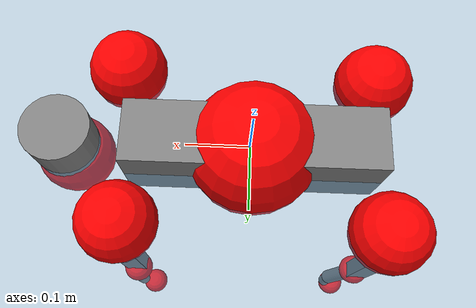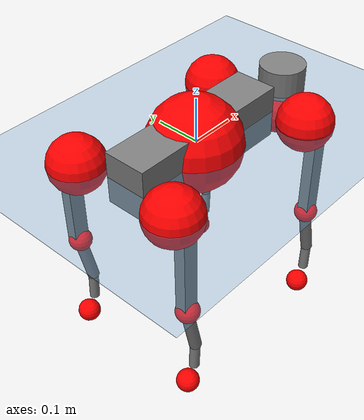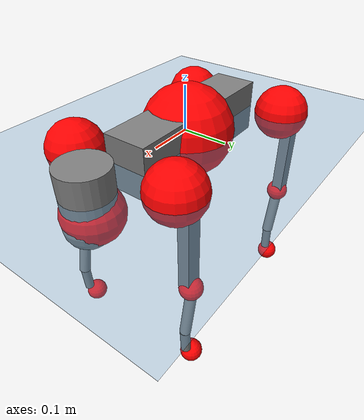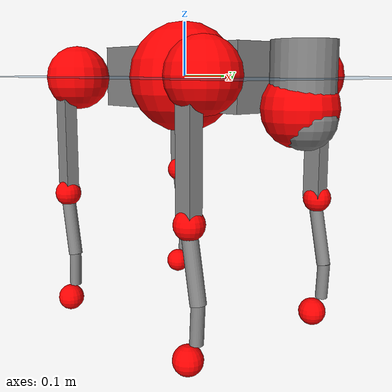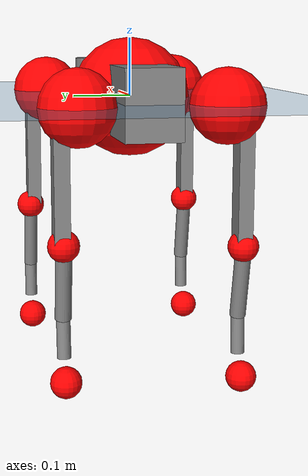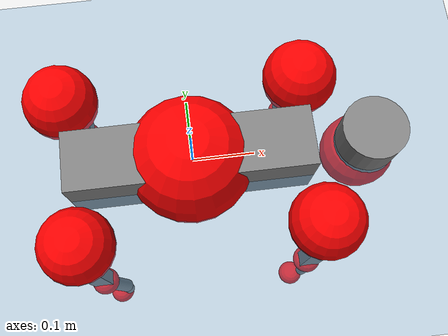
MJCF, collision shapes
<mujoco model="go2">
  <compiler angle="radian" assetdir="assets" balanceinertia="true" inertiafromgeom="false"/>

  <option timestep="0.005" density="1.2" viscosity="2e-05"/>

  <size nkey="1"/>

  <visual>
    <quality shadowsize="8192"/>
    <map shadowclip="0.5"/>
  </visual>

  <default>
    <default class="/">
      <geom contype="0" conaffinity="0" group="1" solref="-1000 -80"/>
      <site size="0.01 0.005 0.005" group="5"/>
      <general forcelimited="true" biastype="affine" gainprm="20" biasprm="0 -20 -0.5"/>
      <default class="go2">
        <joint armature="0.01" damping="0.01" frictionloss="0.2"/>
        <geom condim="1" margin="0.001"/>
        <default class="visual">
          <geom type="mesh" group="2"/>
        </default>
        <default class="collision">
          <geom group="3"/>
          <default class="foot">
            <geom size="0.022 0 0" condim="6" priority="1" friction="0.8 0.02 0.01" solimp="0.015 1 0.022"/>
          </default>
        </default>
        <default class="reward_collision_sphere">
          <geom group="5" rgba="1 0 0 1"/>
        </default>
      </default>
    </default>
  </default>

  <asset>
    <texture type="skybox" colorspace="auto" name="//unnamed_texture_0" builtin="gradient" rgb1="0.95 0.95 0.95" rgb2="0.95 0.95 0.95" width="100" height="600"/>
    <texture type="2d" colorspace="auto" name="texplane" builtin="checker" rgb1="0.345 0.575 0.748" rgb2="0.345 0.575 0.748" markrgb="1 1 1" width="512" height="512"/>
    <material name="MatPlane" class="/" texture="texplane" texuniform="true" texrepeat="2 2" specular="0.9"/>
    <material name="metal" class="/" rgba="0.9 0.95 0.95 1"/>
    <material name="black" class="/" rgba="0 0 0 1"/>
    <material name="white" class="/"/>
    <material name="gray" class="/" rgba="0.671705 0.692426 0.77427 1"/>
    <mesh name="base_0" class="/" file="base_0.obj"/>
    <mesh name="base_1" class="/" file="base_1.obj"/>
    <mesh name="base_2" class="/" file="base_2.obj"/>
    <mesh name="base_3" class="/" file="base_3.obj"/>
    <mesh name="base_4" class="/" file="base_4.obj"/>
    <mesh name="hip_0" class="/" file="hip_0.obj"/>
    <mesh name="hip_1" class="/" file="hip_1.obj"/>
    <mesh name="thigh_0" class="/" file="thigh_0.obj"/>
    <mesh name="thigh_1" class="/" file="thigh_1.obj"/>
    <mesh name="thigh_mirror_0" class="/" file="thigh_mirror_0.obj"/>
    <mesh name="thigh_mirror_1" class="/" file="thigh_mirror_1.obj"/>
    <mesh name="calf_0" class="/" file="calf_0.obj"/>
    <mesh name="calf_1" class="/" file="calf_1.obj"/>
    <mesh name="calf_mirror_0" class="/" file="calf_mirror_0.obj"/>
    <mesh name="calf_mirror_1" class="/" file="calf_mirror_1.obj"/>
    <mesh name="foot" class="/" file="foot.obj"/>
  </asset>

  <worldbody>
    <geom name="floor" class="/" size="100 100 0.125" type="plane" group="0" material="MatPlane"/>
    <light name="toplight_shadow" class="/" pos="0 0 5" dir="0.0990148 0.0990148 -0.990148" type="directional" ambient="0.04 0.04 0.04" diffuse="0.55 0.55 0.55" specular="0.12 0.12 0.12"/>
    <light name="toplight_fill" class="/" pos="0 0 5" dir="0.0990148 0.0990148 -0.990148" type="directional" castshadow="false" ambient="0.04 0.04 0.04" diffuse="0.3 0.3 0.3" specular="0.08 0.08 0.08"/>
    <body name="trunk" childclass="go2" pos="-0.00430888 0.00127749 -0.00161518" quat="0.999999 -0.000471859 -0.000848209 0.000561932">
      <inertial pos="0.0216387 -0.00204112 -0.00570244" quat="-0.000581746 0.713517 -0.00180279 0.700636" mass="7.94028" diaginertia="0.106937 0.113935 0.0314049"/>
      <joint name="//unnamed_joint_0" type="free" armature="0" damping="0" frictionloss="0"/>
      <geom name="//unnamed_geom_1" class="visual" material="black" mesh="base_0"/>
      <geom name="//unnamed_geom_2" class="visual" material="black" mesh="base_1"/>
      <geom name="//unnamed_geom_3" class="visual" material="black" mesh="base_2"/>
      <geom name="//unnamed_geom_4" class="visual" material="white" mesh="base_3"/>
      <geom name="//unnamed_geom_5" class="visual" material="gray" mesh="base_4"/>
      <geom name="trunk_1" class="collision" size="0.195349 0.0485516 0.0591967" type="box"/>
      <geom name="trunk_2" class="collision" size="0.0519269 0.0467342" pos="0.290629 0 0.0105396" type="cylinder"/>
      <geom name="trunk_3" class="collision" size="0.0488113" pos="0.298787 0 -0.0632378"/>
      <geom name="//unnamed_geom_9" class="reward_collision_sphere" size="0.103854"/>
      <geom name="//unnamed_geom_10" class="reward_collision_sphere" size="0.0623123" pos="0.28553 0 -0.0474283"/>
      <site name="imu" pos="-0.0155881 -0.0112542 0.0732233" size="0.0103854"/>
      <camera name="track" pos="0 -2.0838 0" quat="0.707107 0.707107 0 0" mode="trackcom"/>
      <camera name="ego_camera" pos="0.318162 0 0.0474283" quat="-0.5 -0.5 0.5 0.5"/>
      <body name="FL_hip" pos="0.198363 0.0503436 0.00112757" quat="0.999998 0.00175254 0.000476816 -0.000152283">
        <inertial pos="-0.00038975 0.00105224 -0.000759084" quat="0.498346 0.500807 0.505165 0.495633" mass="0.729541" diaginertia="0.000936253 0.000741811 0.000600872"/>
        <joint name="FL_hip_joint" pos="0 0 0" axis="0.999366 -0.0348495 -0.00725779" stiffness="0.0268147" range="-1.08168 1.04715" armature="0.0132703" damping="0.0162435" frictionloss="0.211947"/>
        <geom name="//unnamed_geom_11" class="visual" material="metal" mesh="hip_0"/>
        <geom name="//unnamed_geom_12" class="visual" material="gray" mesh="hip_1"/>
        <geom name="//unnamed_geom_13" class="collision" size="0.0477727 0.0207708" pos="0 0.0833521 0" quat="0.707107 0.707107 0 0" type="cylinder"/>
        <geom name="//unnamed_geom_14" class="reward_collision_sphere" size="0.0623123" pos="0 0.072933 0"/>
        <body name="FL_thigh" pos="0.00104408 0.100569 0.000870186" quat="1 0.000162672 -7.99087e-06 0.0003441">
          <inertial pos="-0.00584802 -0.0231377 -0.0282492" quat="0.830224 0.084038 -0.0226088 0.550594" mass="1.28221" diaginertia="0.00647003 0.00702061 0.0011113"/>
          <joint name="FL_thigh_joint" pos="0 0 0" axis="-0.00142129 0.999999 0.000715921" stiffness="0.0081736" range="-1.55009 3.49339" armature="0.00851088" damping="0.00859171" frictionloss="0.212054"/>
          <geom name="//unnamed_geom_15" class="visual" material="metal" mesh="thigh_0"/>
          <geom name="//unnamed_geom_16" class="visual" material="gray" mesh="thigh_1"/>
          <geom name="//unnamed_geom_17" class="collision" size="0.110604 0.0127221 0.0176551" pos="0 0 -0.112247" quat="0.707107 0 0.707107 0" type="box"/>
          <body name="FL_calf" pos="0.000428688 0.00641997 -0.226018" quat="1 -0.000568237 0.000516922 -0.000475024">
            <inertial pos="0.00679632 -0.00281223 -0.149974" quat="0.728461 0.000556559 -0.00332623 0.685079" mass="0.265526" diaginertia="0.00167807 0.00176571 7.15089e-05"/>
            <joint name="FL_calf_joint" pos="0 0 0" axis="0.00147932 0.999994 -0.00318533" stiffness="0.012017" range="-2.73427 -0.881778" armature="0.009998" damping="0.0171923" frictionloss="0.22794"/>
            <geom name="//unnamed_geom_18" class="visual" material="gray" mesh="calf_0"/>
            <geom name="//unnamed_geom_19" class="visual" material="black" mesh="calf_1"/>
            <geom name="FL_calf0" class="collision" size="0.0124625 0.0623123" pos="0.008158 0 -0.0632378" quat="0.994493 0 -0.104807 0" type="cylinder"/>
            <geom name="//unnamed_geom_21" class="collision" size="0.0114239 0.0337525" pos="0.020395 0 -0.155987" quat="0.999688 0 0.0249974 0" type="cylinder"/>
            <geom name="//unnamed_geom_22" class="visual" pos="0 0 -0.224494" quat="1 0 0 0" material="black" mesh="foot"/>
            <geom name="FL_foot" class="foot" size="0.0209328" pos="-0.0020395 0 -0.224494"/>
            <geom name="//unnamed_geom_24" class="reward_collision_sphere" size="0.0259634"/>
            <geom name="//unnamed_geom_25" class="reward_collision_sphere" size="0.0259634" pos="-0.0020395 0 -0.224494"/>
            <site name="FL_foot" class="foot" pos="-0.0020395 0 -0.224494" size="0.0103854"/>
          </body>
        </body>
      </body>
      <body name="FR_hip" pos="0.203489 -0.0545913 0.00381708" quat="1 -0.000410335 0.0007371 -6.0351e-05">
        <inertial pos="-0.0115127 3.65886e-05 0.00527624" quat="0.50161 0.504485 0.498791 0.495066" mass="0.72775" diaginertia="0.000892548 0.000692731 0.000580116"/>
        <joint name="FR_hip_joint" pos="0 0 0" axis="0.999784 -0.00430586 -0.0203557" stiffness="0.0148844" range="-0.947281 1.09032" armature="0.0100294" damping="0.00289712" frictionloss="0.243347"/>
        <geom name="//unnamed_geom_26" class="visual" pos="0 -1.05082e-10 -4.50716e-09" quat="4.63268e-05 1 0 0" material="metal" mesh="hip_0"/>
        <geom name="//unnamed_geom_27" class="visual" pos="0 -1.7035e-10 1.11479e-08" quat="4.63268e-05 1 0 0" material="gray" mesh="hip_1"/>
        <geom name="//unnamed_geom_28" class="collision" size="0.0477727 0.0207708" pos="0 -0.0833521 0" quat="0.707107 0.707107 0 0" type="cylinder"/>
        <geom name="//unnamed_geom_29" class="reward_collision_sphere" size="0.0623123" pos="0 -0.072933 0"/>
        <body name="FR_thigh" pos="0.000872366 -0.101812 -0.000482418" quat="1 -5.56093e-06 -1.39648e-05 -3.48713e-05">
          <inertial pos="-0.00400892 0.0161876 -0.0323968" quat="0.551589 -0.0195201 0.0821734 0.829829" mass="1.32233" diaginertia="0.00651518 0.00754162 0.00116229"/>
          <joint name="FR_thigh_joint" pos="0 0 0" axis="-0.00887963 -0.999933 -0.0074241" stiffness="0.00479346" range="-3.5353 1.57701" armature="0.00922236" damping="0.0234318" frictionloss="0.232421"/>
          <geom name="//unnamed_geom_30" class="visual" material="metal" mesh="thigh_mirror_0"/>
          <geom name="//unnamed_geom_31" class="visual" material="gray" mesh="thigh_mirror_1"/>
          <geom name="//unnamed_geom_32" class="collision" size="0.110604 0.0127221 0.0176551" pos="0 0 -0.112247" quat="0.707107 0 0.707107 0" type="box"/>
          <body name="FR_calf" pos="-0.000156875 0.00146833 -0.22788" quat="0.999995 -0.00220581 -0.00183284 0.00101351">
            <inertial pos="-0.000797359 0.00182147 -0.152426" quat="0.710866 -0.0055187 0.00692635 0.703271" mass="0.273943" diaginertia="0.0015996 0.00166282 6.2006e-05"/>
            <joint name="FR_calf_joint" pos="0 0 0" axis="-7.89989e-05 -0.999988 0.00486244" range="0.944779 2.69263" armature="0.0116514" damping="0" frictionloss="0.1653"/>
            <geom name="//unnamed_geom_33" class="visual" material="gray" mesh="calf_mirror_0"/>
            <geom name="//unnamed_geom_34" class="visual" material="black" mesh="calf_mirror_1"/>
            <geom name="FR_calf0" class="collision" size="0.013501 0.0623123" pos="0.0101975 0 -0.0632378" quat="0.995004 0 -0.0998334 0" type="cylinder"/>
            <geom name="//unnamed_geom_36" class="collision" size="0.0114239 0.0337525" pos="0.020395 0 -0.155987" quat="0.999688 0 0.0249974 0" type="cylinder"/>
            <geom name="//unnamed_geom_37" class="visual" pos="0 0 -0.224494" quat="1 0 0 0" material="black" mesh="foot"/>
            <geom name="FR_foot" class="foot" size="0.0213636" pos="-0.0020395 0 -0.224494"/>
            <geom name="//unnamed_geom_39" class="reward_collision_sphere" size="0.0259634"/>
            <geom name="//unnamed_geom_40" class="reward_collision_sphere" size="0.0259634" pos="-0.0020395 0 -0.224494"/>
            <site name="FR_foot" class="foot" pos="-0.0020395 0 -0.224494" size="0.0103854"/>
          </body>
        </body>
      </body>
      <body name="RL_hip" pos="-0.204749 0.0519828 -0.000283466" quat="1 0.000400175 -0.000327982 -0.000453226">
        <inertial pos="0.000154751 0.00883381 -0.000632676" quat="0.506999 0.481804 0.502429 0.508313" mass="0.761695" diaginertia="0.000956922 0.000732987 0.000658762"/>
        <joint name="RL_hip_joint" pos="0 0 0" axis="-0.999994 0.000911819 -0.00344205" stiffness="0.00295703" range="-1.0807 1.07519" armature="0.010297" damping="0" frictionloss="0.190678"/>
        <geom name="//unnamed_geom_41" class="visual" pos="2.98048e-10 0 5.84242e-08" quat="4.63268e-05 0 1 0" material="metal" mesh="hip_0"/>
        <geom name="//unnamed_geom_42" class="visual" pos="4.83171e-10 0 5.1814e-08" quat="4.63268e-05 0 1 0" material="gray" mesh="hip_1"/>
        <geom name="//unnamed_geom_43" class="collision" size="0.0477727 0.0207708" pos="0 0.0833521 0" quat="0.707107 0.707107 0 0" type="cylinder"/>
        <geom name="//unnamed_geom_44" class="reward_collision_sphere" size="0.0623123" pos="0 0.072933 0"/>
        <body name="RL_thigh" pos="-0.000297826 0.100284 0.00190436" quat="1 -0.000593159 0.000425223 -3.91017e-05">
          <inertial pos="-0.00156257 -0.0289608 -0.0332451" quat="0.835065 0.0819723 -0.0116621 0.543884" mass="1.29479" diaginertia="0.00651597 0.00711793 0.00120573"/>
          <joint name="RL_thigh_joint" pos="0 0 0" axis="0.0153615 0.999742 -0.0167356" stiffness="0.0155433" range="-0.556077 4.52172" armature="0.00776332" damping="0.0126187" frictionloss="0.171154"/>
          <geom name="//unnamed_geom_45" class="visual" material="metal" mesh="thigh_0"/>
          <geom name="//unnamed_geom_46" class="visual" material="gray" mesh="thigh_1"/>
          <geom name="//unnamed_geom_47" class="collision" size="0.110604 0.0127221 0.0176551" pos="0 0 -0.112247" quat="0.707107 0 0.707107 0" type="box"/>
          <body name="RL_calf" pos="0.00128038 -0.00343665 -0.218358" quat="0.999995 -0.00177179 0.00231741 -0.00150291">
            <inertial pos="0.00813696 -7.04923e-06 -0.156378" quat="0.710943 0.00114866 -0.004661 0.703233" mass="0.284245" diaginertia="0.0016217 0.00176858 6.90964e-05"/>
            <joint name="RL_calf_joint" pos="0 0 0" axis="-0.00203346 0.999965 -0.00812881" range="-2.68134 -0.813509" armature="0.0115183" damping="0" frictionloss="0.23594"/>
            <geom name="//unnamed_geom_48" class="visual" material="gray" mesh="calf_0"/>
            <geom name="//unnamed_geom_49" class="visual" material="black" mesh="calf_1"/>
            <geom name="RL_calf0" class="collision" size="0.013501 0.0623123" pos="0.0101975 0 -0.0632378" quat="0.995004 0 -0.0998334 0" type="cylinder"/>
            <geom name="//unnamed_geom_51" class="collision" size="0.0114239 0.0337525" pos="0.020395 0 -0.155987" quat="0.999688 0 0.0249974 0" type="cylinder"/>
            <geom name="//unnamed_geom_52" class="visual" pos="0 0 -0.224494" quat="1 0 0 0" material="black" mesh="foot"/>
            <geom name="RL_foot" class="foot" size="0.0257724" pos="-0.0020395 0 -0.224494"/>
            <geom name="//unnamed_geom_54" class="reward_collision_sphere" size="0.0259634"/>
            <geom name="//unnamed_geom_55" class="reward_collision_sphere" size="0.0259634" pos="-0.0020395 0 -0.224494"/>
            <site name="RL_foot" class="foot" pos="-0.0020395 0 -0.224494" size="0.0103854"/>
          </body>
        </body>
      </body>
      <body name="RR_hip" pos="-0.191445 -0.0470473 -0.00216648" quat="1 -0.000538785 -0.000600358 0.000213425">
        <inertial pos="0.00353179 -0.00189466 -0.000444379" quat="0.48459 0.486714 0.519239 0.508599" mass="0.73934" diaginertia="0.00094094 0.00069914 0.000598785"/>
        <joint name="RR_hip_joint" pos="0 0 0" axis="-0.999555 -0.0201534 -0.021984" range="-1.05342 1.0861" armature="0.0097021" damping="0.0108074" frictionloss="0.209904"/>
        <geom name="//unnamed_geom_56" class="visual" pos="-2.97281e-10 -1.05082e-10 6.29314e-08" quat="2.14617e-09 4.63268e-05 4.63268e-05 -1" material="metal" mesh="hip_0"/>
        <geom name="//unnamed_geom_57" class="visual" pos="-4.85068e-10 -1.7035e-10 4.0666e-08" quat="2.14617e-09 4.63268e-05 4.63268e-05 -1" material="gray" mesh="hip_1"/>
        <geom name="//unnamed_geom_58" class="collision" size="0.0477727 0.0207708" pos="0 -0.0833521 0" quat="0.707107 0.707107 0 0" type="cylinder"/>
        <geom name="//unnamed_geom_59" class="reward_collision_sphere" size="0.0623123" pos="0 -0.072933 0"/>
        <body name="RR_thigh" pos="0.000219136 -0.101688 -0.00483699" quat="1 3.15959e-05 0.00043142 0.000609128">
          <inertial pos="-0.00145896 0.0218633 -0.0325975" quat="0.543266 -0.0235004 0.116819 0.831061" mass="1.25187" diaginertia="0.00646537 0.00685947 0.00104366"/>
          <joint name="RR_thigh_joint" pos="0 0 0" axis="0.0140679 -0.999888 0.0050322" stiffness="0.00999903" range="-4.54709 0.554497" armature="0.00875022" damping="0.0281993" frictionloss="0.204566"/>
          <geom name="//unnamed_geom_60" class="visual" material="metal" mesh="thigh_mirror_0"/>
          <geom name="//unnamed_geom_61" class="visual" material="gray" mesh="thigh_mirror_1"/>
          <geom name="//unnamed_geom_62" class="collision" size="0.110604 0.0127221 0.0176551" pos="0 0 -0.112247" quat="0.707107 0 0.707107 0" type="box"/>
          <body name="RR_calf" pos="0.000479994 -0.00232422 -0.227431" quat="1 0.000474666 -0.000139372 -0.000158163">
            <inertial pos="0.0105535 0.00675873 -0.154424" quat="0.702288 -0.000155758 0.0068574 0.71186" mass="0.252112" diaginertia="0.00163136 0.00166951 6.68198e-05"/>
            <joint name="RR_calf_joint" pos="0 0 0" axis="-0.00171018 -0.999993 -0.00319396" range="0.80747 2.61628" armature="0.0102795" damping="0.0185406" frictionloss="0.149995"/>
            <geom name="//unnamed_geom_63" class="visual" material="gray" mesh="calf_mirror_0"/>
            <geom name="//unnamed_geom_64" class="visual" material="black" mesh="calf_mirror_1"/>
            <geom name="RR_calf0" class="collision" size="0.013501 0.0623123" pos="0.0101975 0 -0.0632378" quat="0.995004 0 -0.0998334 0" type="cylinder"/>
            <geom name="//unnamed_geom_66" class="collision" size="0.0114239 0.0337525" pos="0.020395 0 -0.155987" quat="0.999688 0 0.0249974 0" type="cylinder"/>
            <geom name="//unnamed_geom_67" class="visual" pos="0 0 -0.224494" quat="1 0 0 0" material="black" mesh="foot"/>
            <geom name="RR_foot" class="foot" size="0.0180172" pos="-0.0020395 0 -0.224494"/>
            <geom name="//unnamed_geom_69" class="reward_collision_sphere" size="0.0259634"/>
            <geom name="//unnamed_geom_70" class="reward_collision_sphere" size="0.0259634" pos="-0.0020395 0 -0.224494"/>
            <site name="RR_foot" class="foot" pos="-0.0020395 0 -0.224494" size="0.0103854"/>
          </body>
        </body>
      </body>
    </body>
  </worldbody>

  <contact>
    <pair class="/" geom1="floor" geom2="FL_foot" name="//unnamed_contact_0"/>
    <pair class="/" geom1="floor" geom2="FR_foot" name="//unnamed_contact_1"/>
    <pair class="/" geom1="floor" geom2="RL_foot" name="//unnamed_contact_2"/>
    <pair class="/" geom1="floor" geom2="RR_foot" name="//unnamed_contact_3"/>
  </contact>

  <actuator>
    <general name="FL_hip" class="/" joint="FL_hip_joint" forcerange="-24.2823 24.2823" gainprm="20.5161" biasprm="0 -20.5161 -0.5442"/>
    <general name="FL_thigh" class="/" joint="FL_thigh_joint" forcerange="-27.8416 27.8416" gainprm="20.5161" biasprm="0 -20.5161 -0.5442"/>
    <general name="FL_calf" class="/" joint="FL_calf_joint" forcerange="-48.5946 48.5946" gainprm="20.5161" biasprm="0 -20.5161 -0.5442"/>
    <general name="FR_hip" class="/" joint="FR_hip_joint" forcerange="-24.7969 24.7969" gainprm="20.5161" biasprm="0 -20.5161 -0.5442"/>
    <general name="FR_thigh" class="/" joint="FR_thigh_joint" forcerange="-26.437 26.437" gainprm="20.5161" biasprm="0 -20.5161 -0.5442"/>
    <general name="FR_calf" class="/" joint="FR_calf_joint" forcerange="-45.2899 45.2899" gainprm="20.5161" biasprm="0 -20.5161 -0.5442"/>
    <general name="RL_hip" class="/" joint="RL_hip_joint" forcerange="-24.8614 24.8614" gainprm="20.5161" biasprm="0 -20.5161 -0.5442"/>
    <general name="RL_thigh" class="/" joint="RL_thigh_joint" forcerange="-23.7298 23.7298" gainprm="20.5161" biasprm="0 -20.5161 -0.5442"/>
    <general name="RL_calf" class="/" joint="RL_calf_joint" forcerange="-47.3814 47.3814" gainprm="20.5161" biasprm="0 -20.5161 -0.5442"/>
    <general name="RR_hip" class="/" joint="RR_hip_joint" forcerange="-23.3226 23.3226" gainprm="20.5161" biasprm="0 -20.5161 -0.5442"/>
    <general name="RR_thigh" class="/" joint="RR_thigh_joint" forcerange="-26.3477 26.3477" gainprm="20.5161" biasprm="0 -20.5161 -0.5442"/>
    <general name="RR_calf" class="/" joint="RR_calf_joint" forcerange="-58.8349 58.8349" gainprm="20.5161" biasprm="0 -20.5161 -0.5442"/>
  </actuator>

  <sensor>
    <gyro site="imu" name="imu_angular_velocity"/>
    <velocimeter site="imu" name="imu_linear_velocity"/>
    <framelinvel objtype="site" objname="FL_foot" name="FL_foot_global_linear_velocity"/>
    <framelinvel objtype="site" objname="FR_foot" name="FR_foot_global_linear_velocity"/>
    <framelinvel objtype="site" objname="RL_foot" name="RL_foot_global_linear_velocity"/>
    <framelinvel objtype="site" objname="RR_foot" name="RR_foot_global_linear_velocity"/>
  </sensor>

  <keyframe>
    <key name="home" qpos="0 0 0.325 1 0 0 0 0.1 0.8 -1.5 -0.1 -0.8 1.5 -0.1 0.8 -1.5 0.1 -0.8 1.5"/>
  </keyframe>
</mujoco>
